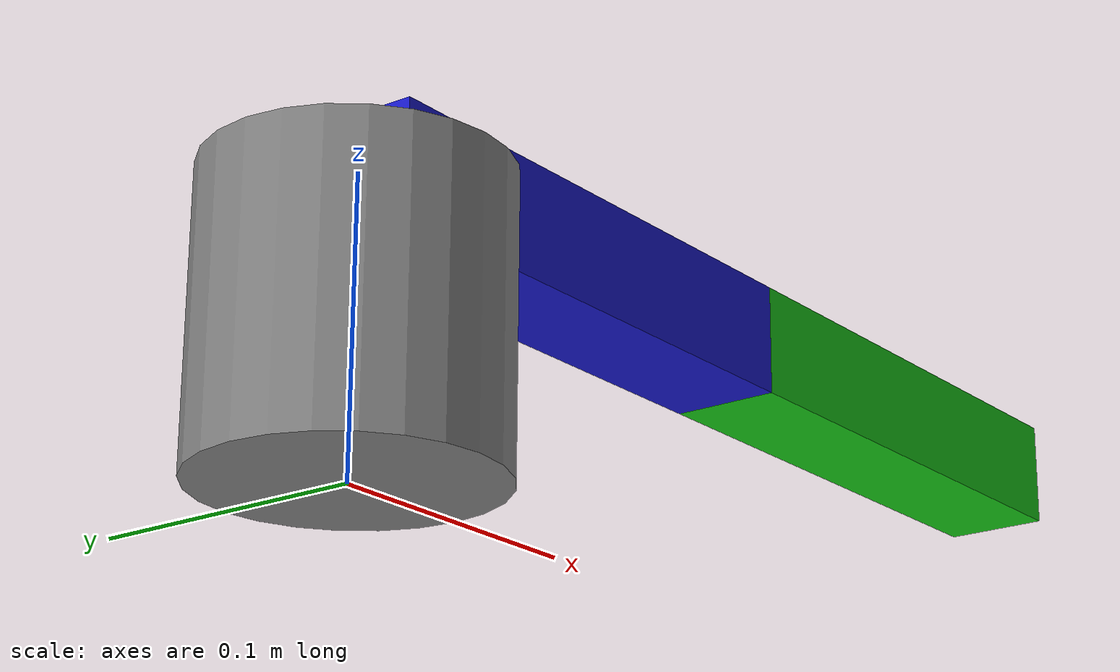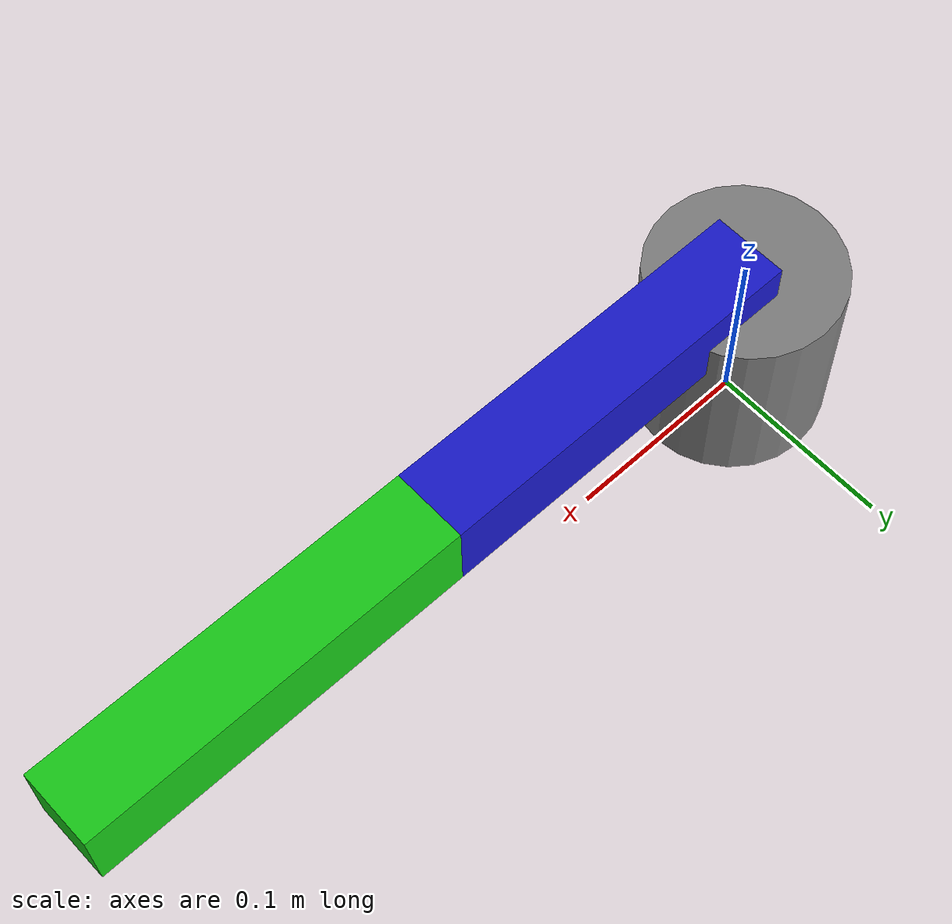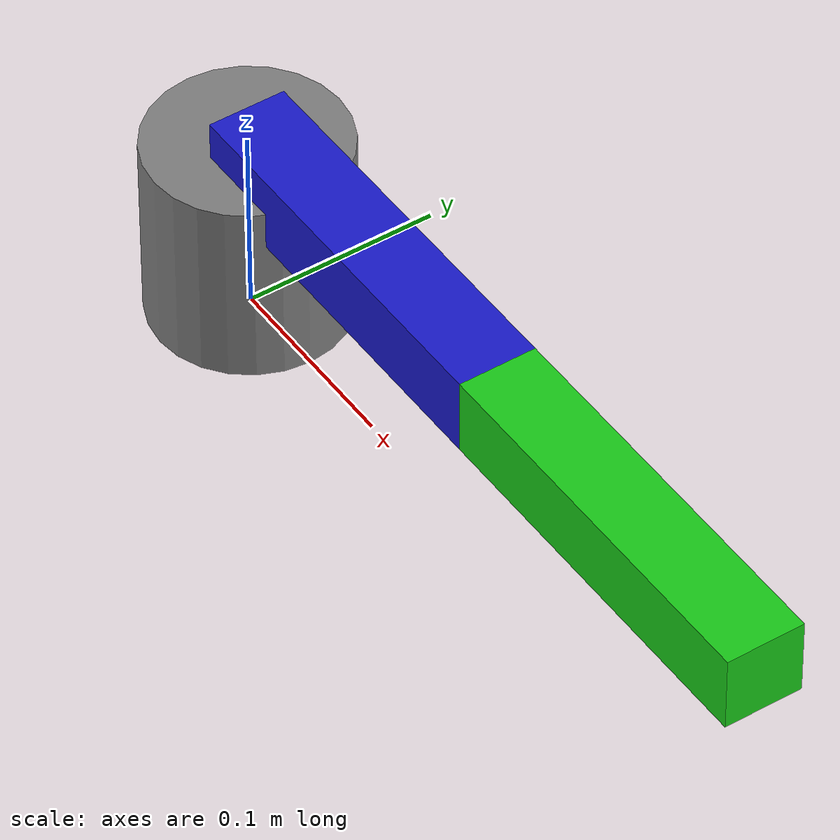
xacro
<?xml version="1.0"?>
<robot xmlns:xacro="http://www.ros.org/wiki/xacro" name="scara_robot">

    <xacro:arg name="use_sim" default="false"/>

    <!--가상 gazebo ros2 control 설정-->
    <xacro:if value="$(arg use_sim)">
        <ros2_control name="GazeboSystem" type="system">
            <hardware>
                <plugin>gazebo_ros2_control/GazeboSystem</plugin>
            </hardware>
            <joint name="joint_1">
                <command_interface name="position">
                    <param name="min">-2.356</param>
                    <param name="max">2.356</param>
                </command_interface>
                <state_interface name="position"/>
                <state_interface name="velocity"/>
            </joint>
            <joint name="joint_2">
                <command_interface name="position">
                    <param name="min">-2.356</param>
                    <param name="max">2.356</param>
                </command_interface>
                <state_interface name="position"/>
                <state_interface name="velocity"/>
            </joint>
        </ros2_control>
        <gazebo>
            <plugin name="gazebo_ros2_control" filename="libgazebo_ros2_control.so">
                <parameters>$(find scara_description)/config/scara_controllers.yaml</parameters>
            </plugin>
        </gazebo>

            <gazebo reference="link_1">
                <disable_collisions link1="base_link" link2="link_1" />
            </gazebo>

        <gazebo reference="link_2">
            <disable_collisions link1="link_1" link2="link_2" />
        </gazebo>
    </xacro:if>

    <!--실제 로봇 roe2 control 설정-->
    <xacro:unless value="$(arg use_sim)">
        <ros2_control name="DynamixelSystem" type="system">
            <hardware>
                <plugin>dynamixel_hardware_interface/DynamixelHardware</plugin>
                <param name="port_name">/dev/ttyUSB0</param>
                <param name="baud_rate">57600</param>
                <param name="error_timeout_ms">500</param>
                <param name="number_of_joints">2</param>
                <param name="number_of_transmissions">2</param>
                <param name="dynamixel_model_folder">/param/dxl_model</param>
                <param name="disable_torque_at_init">true</param>
                <param name="transmission_to_joint_matrix">1,0,0,1</param>
                <param name="joint_to_transmission_matrix">1,0,0,1</param>
                <param name="dynamixel_state_pub_msg_name">dynamixel_hardware_interface/dxl_state</param>
                <param name="get_dynamixel_data_srv_name">dynamixel_hardware_interface/get_dxl_data</param>
                <param name="set_dynamixel_data_srv_name">dynamixel_hardware_interface/set_dxl_data</param>
                <param name="reboot_dxl_srv_name">dynamixel_hardware_interface/reboot_dxl</param>
                <param name="set_dxl_torque_srv_name">dynamixel_hardware_interface/set_dxl_torque</param>
                </hardware>

            <joint name="joint_1">
                <command_interface name="position"/>
                <state_interface name="position"/>
                <state_interface name="velocity"/>
            </joint>
            <joint name="joint_2">
                <command_interface name="position"/>
                <state_interface name="position"/>
                <state_interface name="velocity"/>
            </joint>

            <gpio name="joint_1_motor">
                <param name="type">dxl</param>
                <param name="ID">1</param>
                <command_interface name="Goal Position"/>
                <state_interface name="Present Position"/>
                <state_interface name="Present Velocity"/>
                <param name="Position P Gain">800</param>
                <param name="Position I Gain">100</param>
                <param name="Position D Gain">100</param>
                <param name="Profile Velocity">150</param>
                <param name="Profile Acceleration">50</param>
                <param name="Drive Mode">1</param>
            </gpio>
            <gpio name="joint_2_motor">
                <param name="type">dxl</param>
                <param name="ID">2</param>
                <command_interface name="Goal Position"/>
                <state_interface name="Present Position"/>
                <state_interface name="Present Velocity"/>
                <param name="Position P Gain">800</param>
                <param name="Position I Gain">100</param>
                <param name="Position D Gain">100</param>
                <param name="Profile Velocity">150</param>
                <param name="Profile Acceleration">50</param>
                <param name="Drive Mode">1</param>
            </gpio>

            <transmission name="tran1">
                <plugin>transmission_interface/SimpleTransmissionLoader</plugin>
                <joint name="joint_1" role="joint"/>
                <actuator name="joint_1_motor" role="actuator"/>
            </transmission>
            <transmission name="tran2">
                <plugin>transmission_interface/SimpleTransmissionLoader</plugin>
                <joint name="joint_2" role="joint"/>
                <actuator name="joint_2_motor" role="actuator"/>
            </transmission>
        </ros2_control>
    </xacro:unless>

    <!-- 변수 및 재료 정의 -->
    <xacro:property name="link_1_length" value="0.2" />
    <xacro:property name="link_2_length" value="0.2" />
    <xacro:property name="link_radius" value="0.02" />
    <material name="blue"><color rgba="0.1 0.1 0.8 1.0"/></material>
    <material name="green"><color rgba="0.1 0.8 0.1 1.0"/></material>
    <material name="grey"><color rgba="0.5 0.5 0.5 1.0"/></material>

    <!-- 고정된 월드와 베이스 -->
    <link name="world" />
    <link name="base_link">
        <visual><geometry><cylinder radius="0.05" length="0.1"/></geometry><material name="grey"/></visual><!--링크 비주얼-->
        <collision><geometry><cylinder radius="0.05" length="0.1"/></geometry></collision><!--링크 충돌영역-->
        <inertial><mass value="1"/><inertia ixx="0.001" ixy="0" ixz="0" iyy="0.001" iyz="0" izz="0.001"/></inertial><!--링크 물리적특성-->
    </link>

    <joint name="world_to_base" type="fixed"><parent link="world"/><child link="base_link"/><origin xyz="0 0 0.05" rpy="0 0 0"/></joint>

    <!-- 링크 1 -->
    <link name="link_1">
        <visual><origin xyz="${link_1_length/2} 0 0"/><geometry><box size="${link_1_length} 0.04 0.04"/></geometry><material name="blue"/></visual>
        <collision><origin xyz="${link_1_length/2} 0 0"/><geometry><box size="${link_1_length} 0.04 0.04"/></geometry></collision>

        <inertial><mass value="0.2"/><origin xyz="${link_1_length/2} 0 0" rpy="0 0 0"/><inertia ixx="0.000054" ixy="0.0" ixz="0.0" iyy="0.000694" iyz="0.0" izz="0.000694"/></inertial>
    </link>

    <joint name="joint_1" type="revolute">
        <parent link="base_link" /><child link="link_1" />
        <origin xyz="0 0 ${0.1/2}" rpy="0 0 0"/>
        <axis xyz="0 0 1"/>
        <limit lower="-3.14159" upper="3.14159" effort="1.5" velocity="6.38791"/>
    </joint>

    <!-- 링크 2 -->
    <link name="link_2">
        <visual><origin xyz="${link_2_length/2} 0 0"/><geometry><box size="${link_2_length} 0.04 0.04"/></geometry><material name="green"/></visual>
        <collision><origin xyz="${link_2_length/2} 0 0"/><geometry><box size="${link_2_length} 0.04 0.04"/></geometry></collision>

        <inertial><mass value="0.2"/><origin xyz="${link_2_length/2} 0 0" rpy="0 0 0"/><inertia ixx="0.000054" ixy="0.0" ixz="0.0" iyy="0.000694" iyz="0.0" izz="0.000694"/></inertial>
    </link>

    <joint name="joint_2" type="revolute">
        <parent link="link_1" /><child link="link_2" />
        <origin xyz="${link_1_length} 0 0" rpy="0 0 0"/>
        <axis xyz="0 0 1"/>
        <limit lower="-3.14159" upper="3.14159" effort="1.5" velocity="6.38791"/>
    </joint>

    <!-- ROS2 CONTROL & GAZEBO PLUGIN -->

</robot>
